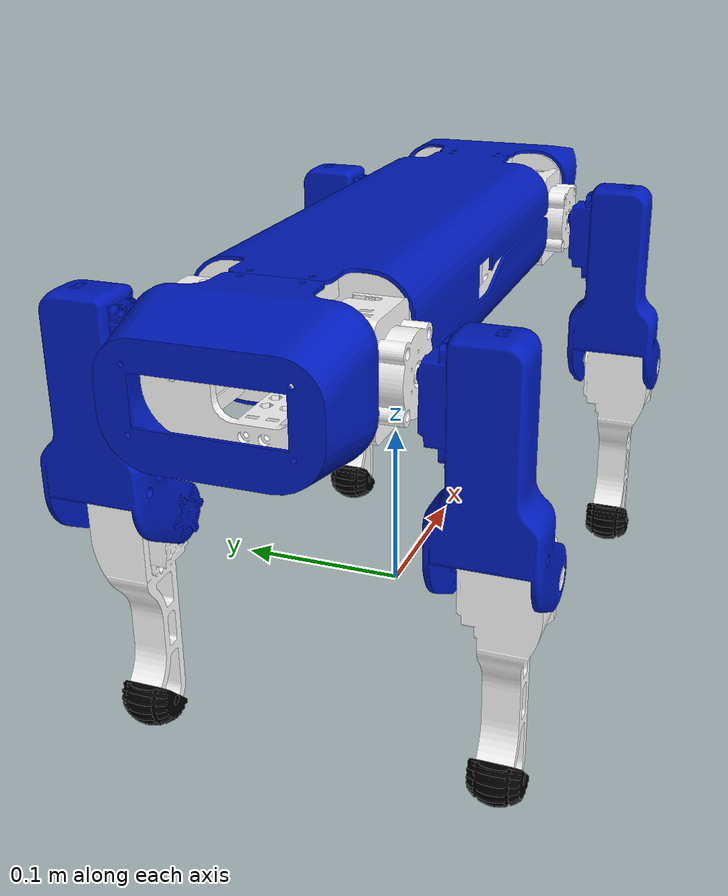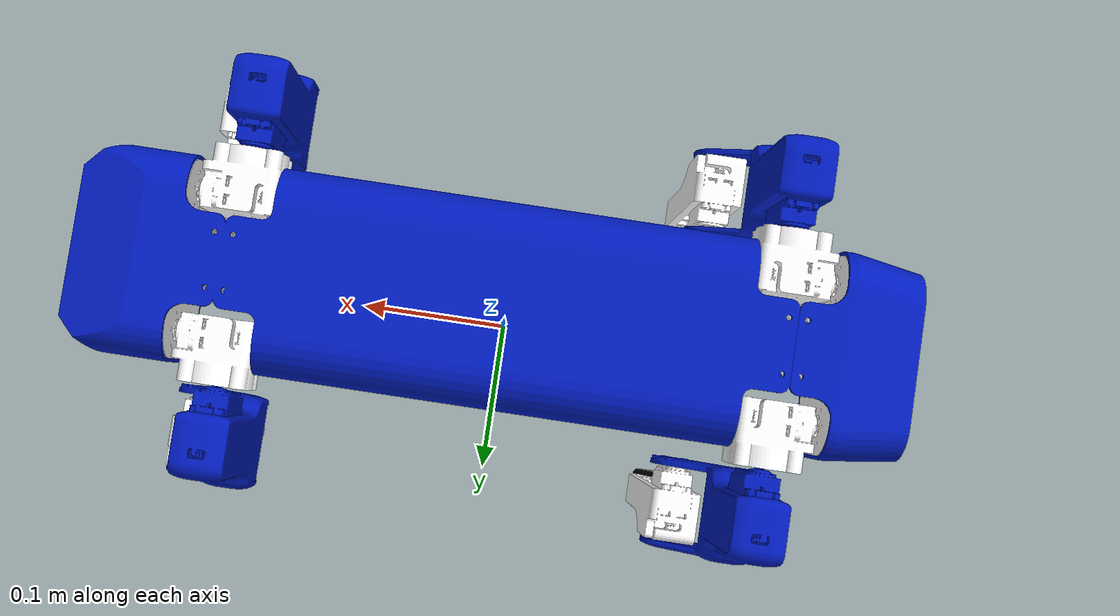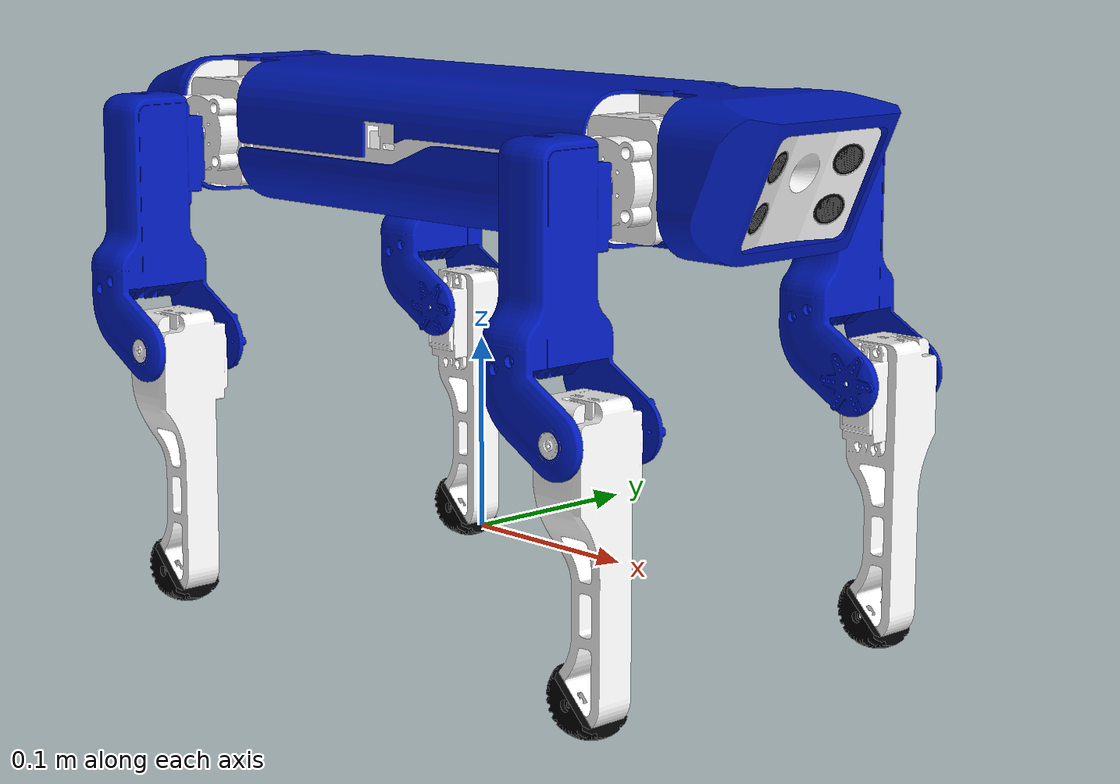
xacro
<?xml version="1.0" ?>
<robot name="spotty" xmlns:xacro="http://www.ros.org/wiki/xacro">

<xacro:include filename="$(find spotty_description)/urdf/spotty.gazebo" />
<xacro:include filename="$(find spotty_description)/urdf/spotty.trans" />
<xacro:include filename="$(find spotty_description)/urdf/materials.xacro" />

<!-- LINK -->

<link name="base_odom">
</link>

<link name="base_link">
  <inertial>
    <origin xyz="0.00020902261971693134 4.8225601862200574e-05 -0.0006015050067879294" rpy="0 0 0"/>
    <mass value="0.30443631870726445"/>
    <inertia ixx="0.00045" iyy="0.004962" izz="0.005184" ixy="1e-06" iyz="0.0" ixz="0.0"/>
  </inertial>
  <visual>
    <origin xyz="0 0 0" rpy="0 0 0"/>
    <geometry>
      <mesh filename="package://spotty_description/meshes/base_link.stl" scale="0.001 0.001 0.001"/>
    </geometry>
    <material name="white"/>
  </visual>
  <collision>
    <origin xyz="0 0 0" rpy="0 0 0"/>
    <geometry>
      <box size="0.26 0.11 0.07"/>
    </geometry>
  </collision>
</link>

<link name="front_cover_link">
  <inertial>
    <origin xyz="-0.09198458121707576 0.004987805533090641 0.020957654451882843" rpy="0 0 0"/>
    <mass value="1.0538029561695712"/>
    <inertia ixx="0.002059" iyy="0.015193" izz="0.016308" ixy="-2e-06" iyz="-0.0" ixz="0.001007"/>
  </inertial>
  <visual>
    <origin xyz="-0.15875 0.005 0.0" rpy="0 0 0"/>
    <geometry>
      <mesh filename="package://spotty_description/meshes/front_link.stl" scale="0.001 0.001 0.001"/>
    </geometry>
    <material name="blue"/>
  </visual>
  <collision>
    <origin xyz="0.048 0.005 0" rpy="0 0 0"/>
    <geometry>
      <box size="0.05825 0.11 0.07"/>
    </geometry>
  </collision>
</link>

<link name="rear_cover_link">
  <inertial>
    <origin xyz="0.09959773739649241 0.005000384322942722 -0.01911040508583787" rpy="0 0 0"/>
    <mass value="0.9732444797625318"/>
    <inertia ixx="0.001903" iyy="0.013413" izz="0.014369" ixy="0.0" iyz="-0.0" ixz="0.001117"/>
  </inertial>
  <visual>
    <origin xyz="0.15875 0.005 0.0" rpy="0 0 0"/>
    <geometry>
      <mesh filename="package://spotty_description/meshes/rear_link.stl" scale="0.001 0.001 0.001"/>
    </geometry>
    <material name="blue"/>
  </visual>
  <collision>
    <origin xyz="-0.041 0.005 0.0" rpy="0 0 0"/>
    <geometry>
      <box size="0.045 0.11 0.07"/>
    </geometry>
  </collision>
</link>

<link name="sensor_face_support_link">
  <inertial>
    <origin xyz="-0.005993554814395119 0.04323106909652843 -0.013058844893903814" rpy="0 0 0"/>
    <mass value="0.3305972363247997"/>
    <inertia ixx="0.000237" iyy="0.000112" izz="0.000172" ixy="-1e-06" iyz="0.0" ixz="-3e-05"/>
  </inertial>
  <visual>
    <origin xyz="-0.211664 0.043 -0.011242" rpy="0 0 0"/>
    <geometry>
      <mesh filename="package://spotty_description/meshes/sensor_face_link.stl" scale="0.001 0.001 0.001"/>
    </geometry>
    <material name="white"/>
  </visual>
  <collision>
    <origin xyz="-0.211664 0.043 -0.011242" rpy="0 0 0"/>
    <geometry>
      <mesh filename="package://spotty_description/meshes/sensor_face_link.stl" scale="0.001 0.001 0.001"/>
    </geometry>
  </collision>
</link>

<link name="left_ultrasonic_sensor_link">
  <inertial>
    <origin xyz="-0.014350229112798818 0.002773024008515635 -0.007757241323093005" rpy="0 0 0"/>
    <mass value="0.02528835836886261"/>
    <inertia ixx="4e-06" iyy="5e-06" izz="2e-06" ixy="-0.0" iyz="0.0" ixz="-1e-06"/>
  </inertial>
  <visual>
    <origin xyz="-0.21967 -0.024294 -0.007824" rpy="0 0 0"/>
    <geometry>
      <mesh filename="package://spotty_description/meshes/left_ultrasonic_sensor_link.stl" scale="0.001 0.001 0.001"/>
    </geometry>
    <material name="black"/>
  </visual>
</link>

<link name="optical_left_ultrasonic_sensor_link">
</link>

<link name="right_ultrasonic_sensor_link">
  <inertial>
    <origin xyz="-0.014350225456665422 -0.002773224813590037 -0.007757233246436109" rpy="0 0 0"/>
    <mass value="0.02528835836886261"/>
    <inertia ixx="4e-06" iyy="5e-06" izz="2e-06" ixy="0.0" iyz="-0.0" ixz="-1e-06"/>
  </inertial>
  <visual>
    <origin xyz="-0.21967 0.024293 -0.007824" rpy="0 0 0"/>
    <geometry>
      <mesh filename="package://spotty_description/meshes/right_ultrasonic_sensor_link.stl" scale="0.001 0.001 0.001"/>
    </geometry>
    <material name="black"/>
  </visual>
</link>

<link name="optical_right_ultrasonic_sensor_link">
</link>

<link name="camera_link">
  <inertial>
    <origin xyz="-0.004164947240767131 4.025455251841104e-07 0.0004522747634588414" rpy="0 0 0"/>
    <mass value="0.009136932367336871"/>
    <inertia ixx="1e-06" iyy="0.0" izz="0.0" ixy="0.0" iyz="-0.0" ixz="0.0"/>
  </inertial>
  <visual>
    <origin xyz="-0.200732 -0.0 -0.001456" rpy="0 0 0"/>
    <geometry>
      <mesh filename="package://spotty_description/meshes/camera_link.stl" scale="0.001 0.001 0.001"/>
    </geometry>
    <material name="black"/>
  </visual>
</link>

<link name="optical_camera_link">
</link>

<link name="front_right_shoulder_link">
  <inertial>
    <origin xyz="-0.0016542984907777225 -0.005584932654453888 -0.009932281115677361" rpy="0 0 0"/>
    <mass value="0.43602933994498916"/>
    <inertia ixx="0.00015" iyy="0.000179" izz="0.000118" ixy="2e-06" iyz="0.0" ixz="-0.0"/>
  </inertial>
  <visual>
    <origin xyz="-0.15325 0.039 -0.009" rpy="0 0 0"/>
    <geometry>
      <mesh filename="package://spotty_description/meshes/front_right_shoulder_link.stl" scale="0.001 0.001 0.001"/>
    </geometry>
    <material name="white"/>
  </visual>
  <collision>
    <origin xyz="0.0 -0.0025 -0.009" rpy="0 0 0"/>
    <geometry>
      <box size="0.044 0.037 0.07"/>
    </geometry>
  </collision>
</link>

<link name="front_right_leg_link">
  <inertial>
    <origin xyz="0.0015680354138068453 -0.03506934487717556 -0.04006022180366868" rpy="0 0 0"/>
    <mass value="1.0511050419548709"/>
    <inertia ixx="0.001611" iyy="0.00147" izz="0.000386" ixy="-1e-06" iyz="-4.8e-05" ixz="0.000102"/>
  </inertial>
  <visual>
    <origin xyz="-0.15255 0.063 0.001" rpy="0 0 0"/>
    <geometry>
      <mesh filename="package://spotty_description/meshes/front_right_leg_link.stl" scale="0.001 0.001 0.001"/>
    </geometry>
    <material name="blue"/>
  </visual>
  <collision>
    <origin xyz="0 -0.036 -0.032" rpy="0 0 0"/>
    <geometry>
      <box size="0.03 0.037 0.1106"/>
    </geometry>
  </collision>
</link>

<link name="front_right_foot_link">
  <inertial>
    <origin xyz="0.0008748479427208578 -0.0023372298260112 -0.03292840735657025" rpy="0 0 0"/>
    <mass value="0.6331144023537385"/>
    <inertia ixx="0.001076" iyy="0.001052" izz="0.000118" ixy="-2e-06" iyz="2.3e-05" ixz="3.3e-05"/>
  </inertial>
  <visual>
    <origin xyz="-0.18255 0.10065 0.10775" rpy="0 0 0"/>
    <geometry>
      <mesh filename="package://spotty_description/meshes/front_right_foot_link.stl" scale="0.001 0.001 0.001"/>
    </geometry>
    <material name="white"/>
  </visual>
  <collision>
    <origin xyz="0.0 0.0 -0.0483" rpy="0 0 0"/>
    <geometry>
      <box size="0.030 0.020 0.117"/>
    </geometry>
  </collision>
</link>

<link name="front_right_toe_link">
  <inertial>
    <origin xyz="-0.004155509486183956 -6.401456177085318e-07 -0.004154421861264912" rpy="0 0 0"/>
    <mass value="0.06493004425254276"/>
    <inertia ixx="8e-06" iyy="8e-06" izz="8e-06" ixy="0.0" iyz="0.0" ixz="3e-06"/>
  </inertial>
  <visual>
    <origin xyz="-0.180183 0.10135 0.228368" rpy="0 0 0"/>
    <geometry>
      <mesh filename="package://spotty_description/meshes/front_right_toe_link.stl" scale="0.001 0.001 0.001"/>
    </geometry>
    <material name="black"/>
  </visual>
  <collision>
    <origin xyz="0.0 0.0 -0.0015" rpy="0 0 0"/>
    <geometry>
      <sphere radius="0.015"/>
    </geometry>
  </collision>
</link>

<link name="front_left_shoulder_link">
  <inertial>
    <origin xyz="-0.0016543357277108706 0.005585743301051223 -0.009932185985287317" rpy="0 0 0"/>
    <mass value="0.4360328404223618"/>
    <inertia ixx="0.00015" iyy="0.000179" izz="0.000118" ixy="-2e-06" iyz="-0.0" ixz="-0.0"/>
  </inertial>
  <visual>
    <origin xyz="-0.15325 -0.039 -0.009" rpy="0 0 0"/>
    <geometry>
      <mesh filename="package://spotty_description/meshes/front_left_shoulder_link.stl" scale="0.001 0.001 0.001"/>
    </geometry>
    <material name="white"/>
  </visual>
  <collision>
    <origin xyz="0.0 0.0025 -0.009" rpy="0 0 0"/>
    <geometry>
      <box size="0.044 0.037 0.07"/>
    </geometry>
  </collision>
</link>

<link name="front_left_leg_link">
  <inertial>
    <origin xyz="0.0015680290766370564 0.0350702109049426 -0.04006021617647847" rpy="0 0 0"/>
    <mass value="1.0511049613338161"/>
    <inertia ixx="0.001611" iyy="0.00147" izz="0.000386" ixy="1e-06" iyz="4.8e-05" ixz="0.000102"/>
  </inertial>
  <visual>
    <origin xyz="-0.15255 -0.063 0.001" rpy="0 0 0"/>
    <geometry>
      <mesh filename="package://spotty_description/meshes/front_left_leg_link.stl" scale="0.001 0.001 0.001"/>
    </geometry>
    <material name="blue"/>
  </visual>
  <collision>
    <origin xyz="0 0.036 -0.032" rpy="0 0 0"/>
    <geometry>
      <box size="0.03 0.037 0.1106"/>
    </geometry>
  </collision>
</link>

<link name="front_left_foot_link">
  <inertial>
    <origin xyz="0.000874850369267377 0.002338122491525832 -0.03292840591679373" rpy="0 0 0"/>
    <mass value="0.6331144723952644"/>
    <inertia ixx="0.001076" iyy="0.001052" izz="0.000118" ixy="2e-06" iyz="-2.3e-05" ixz="3.3e-05"/>
  </inertial>
  <visual>
    <origin xyz="-0.18255 -0.10065 0.10775" rpy="0 0 0"/>
    <geometry>
      <mesh filename="package://spotty_description/meshes/front_left_foot_link.stl" scale="0.001 0.001 0.001"/>
    </geometry>
    <material name="white"/>
  </visual>
  <collision>
    <origin xyz="0.0 0.0 -0.0483" rpy="0 0 0"/>
    <geometry>
      <box size="0.030 0.020 0.117"/>
    </geometry>
  </collision>
</link>

<link name="front_left_toe_link">
  <inertial>
    <origin xyz="-0.004151625883102583 -3.299655052663164e-07 -0.004152267667033915" rpy="0 0 0"/>
    <mass value="0.06495623656223376"/>
    <inertia ixx="8e-06" iyy="8e-06" izz="8e-06" ixy="0.0" iyz="0.0" ixz="3e-06"/>
  </inertial>
  <visual>
    <origin xyz="-0.180183 -0.10135 0.228368" rpy="0 0 0"/>
    <geometry>
      <mesh filename="package://spotty_description/meshes/front_left_toe_link.stl" scale="0.001 0.001 0.001"/>
    </geometry>
    <material name="black"/>
  </visual>
  <collision>
    <origin xyz="0.0 0.0 -0.0015" rpy="0 0 0"/>
    <geometry>
      <sphere radius="0.015"/>
    </geometry>
  </collision>
</link>

<link name="rear_right_shoulder_link">
  <inertial>
    <origin xyz="0.001655228054530028 -0.005584895121144434 -0.009932187078876574" rpy="0 0 0"/>
    <mass value="0.4360327621893695"/>
    <inertia ixx="0.00015" iyy="0.000179" izz="0.000118" ixy="-2e-06" iyz="0.0" ixz="0.0"/>
  </inertial>
  <visual>
    <origin xyz="0.15325 0.039 -0.009" rpy="0 0 0"/>
    <geometry>
      <mesh filename="package://spotty_description/meshes/rear_right_shoulder_link.stl" scale="0.001 0.001 0.001"/>
    </geometry>
    <material name="white"/>
  </visual>
  <collision>
    <origin xyz="0.0 -0.0025 -0.009" rpy="0 0 0"/>
    <geometry>
      <box size="0.044 0.037 0.07"/>
    </geometry>
  </collision>
</link>

<link name="rear_right_leg_link">
  <inertial>
    <origin xyz="0.0015680060786525396 -0.0350693459690756 -0.04006021884086707" rpy="0 0 0"/>
    <mass value="1.0511050020771726"/>
    <inertia ixx="0.001611" iyy="0.00147" izz="0.000386" ixy="-1e-06" iyz="-4.8e-05" ixz="0.000102"/>
  </inertial>
  <visual>
    <origin xyz="0.15255 0.063 0.001" rpy="0 0 0"/>
    <geometry>
      <mesh filename="package://spotty_description/meshes/rear_right_leg_link.stl" scale="0.001 0.001 0.001"/>
    </geometry>
    <material name="blue"/>
  </visual>
  <collision>
    <origin xyz="0 -0.036 -0.032" rpy="0 0 0"/>
    <geometry>
      <box size="0.03 0.037 0.1106"/>
    </geometry>
  </collision>
</link>

<link name="rear_right_foot_link">
  <inertial>
    <origin xyz="0.0008748002650984243 -0.002337223287890322 -0.03292840413244362" rpy="0 0 0"/>
    <mass value="0.6331144008783258"/>
    <inertia ixx="0.001076" iyy="0.001052" izz="0.000118" ixy="-2e-06" iyz="2.3e-05" ixz="3.3e-05"/>
  </inertial>
  <visual>
    <origin xyz="0.12255 0.10065 0.10775" rpy="0 0 0"/>
    <geometry>
      <mesh filename="package://spotty_description/meshes/rear_right_foot_link.stl" scale="0.001 0.001 0.001"/>
    </geometry>
    <material name="white"/>
  </visual>
  <collision>
    <origin xyz="0.0 0.0 -0.0483" rpy="0 0 0"/>
    <geometry>
      <box size="0.030 0.020 0.117"/>
    </geometry>
  </collision>
</link>

<link name="rear_right_toe_link">
  <inertial>
    <origin xyz="-0.004155509486179071 -6.401456167509645e-07 -0.004154421861266355" rpy="0 0 0"/>
    <mass value="0.06493004425254276"/>
    <inertia ixx="8e-06" iyy="8e-06" izz="8e-06" ixy="0.0" iyz="0.0" ixz="3e-06"/>
  </inertial>
  <visual>
    <origin xyz="0.124917 0.10135 0.228368" rpy="0 0 0"/>
    <geometry>
      <mesh filename="package://spotty_description/meshes/rear_right_toe_link.stl" scale="0.001 0.001 0.001"/>
    </geometry>
    <material name="black"/>
  </visual>
  <collision>
    <origin xyz="0.0 0.0 -0.0015" rpy="0 0 0"/>
    <geometry>
      <sphere radius="0.015"/>
    </geometry>
  </collision>
</link>

<link name="rear_left_shoulder_link">
  <inertial>
    <origin xyz="0.0016552203181348368 0.00558575064050066 -0.009932202448579973" rpy="0 0 0"/>
    <mass value="0.4360324350506454"/>
    <inertia ixx="0.00015" iyy="0.000179" izz="0.000118" ixy="2e-06" iyz="-0.0" ixz="0.0"/>
  </inertial>
  <visual>
    <origin xyz="0.15325 -0.039 -0.009" rpy="0 0 0"/>
    <geometry>
      <mesh filename="package://spotty_description/meshes/rear_left_shoulder_link.stl" scale="0.001 0.001 0.001"/>
    </geometry>
    <material name="white"/>
  </visual>
  <collision>
    <origin xyz="0.0 0.0025 -0.009" rpy="0 0 0"/>
    <geometry>
      <box size="0.044 0.037 0.07"/>
    </geometry>
  </collision>
</link>

<link name="rear_left_leg_link">
  <inertial>
    <origin xyz="0.0015680033756574618 0.035070211824869704 -0.04006021677732277" rpy="0 0 0"/>
    <mass value="1.051104923474581"/>
    <inertia ixx="0.001611" iyy="0.00147" izz="0.000386" ixy="1e-06" iyz="4.8e-05" ixz="0.000102"/>
  </inertial>
  <visual>
    <origin xyz="0.15255 -0.063 0.001" rpy="0 0 0"/>
    <geometry>
      <mesh filename="package://spotty_description/meshes/rear_left_leg_link.stl" scale="0.001 0.001 0.001"/>
    </geometry>
    <material name="blue"/>
  </visual>
  <collision>
    <origin xyz="0 0.036 -0.032" rpy="0 0 0"/>
    <geometry>
      <box size="0.03 0.037 0.1106"/>
    </geometry>
  </collision>
</link>

<link name="rear_left_foot_link">
  <inertial>
    <origin xyz="0.0008748023829627805 0.0023381229587267904 -0.03292840970392229" rpy="0 0 0"/>
    <mass value="0.6331141886569122"/>
    <inertia ixx="0.001076" iyy="0.001052" izz="0.000118" ixy="2e-06" iyz="-2.3e-05" ixz="3.3e-05"/>
  </inertial>
  <visual>
    <origin xyz="0.12255 -0.10065 0.10775" rpy="0 0 0"/>
    <geometry>
      <mesh filename="package://spotty_description/meshes/rear_left_foot_link.stl" scale="0.001 0.001 0.001"/>
    </geometry>
    <material name="white"/>
  </visual>
  <collision>
    <origin xyz="0.0 0.0 -0.0483" rpy="0 0 0"/>
    <geometry>
      <box size="0.030 0.020 0.117"/>
    </geometry>
  </collision>
</link>

<link name="rear_left_toe_link">
  <inertial>
    <origin xyz="-0.00414838524007291 1.3894420968774135e-06 -0.004147769272270424" rpy="0 0 0"/>
    <mass value="0.06498166475741922"/>
    <inertia ixx="8e-06" iyy="8e-06" izz="8e-06" ixy="-0.0" iyz="-0.0" ixz="3e-06"/>
  </inertial>
  <visual>
    <origin xyz="0.124917 -0.10135 0.228368" rpy="0 0 0"/>
    <geometry>
      <mesh filename="package://spotty_description/meshes/rear_left_toe_link.stl" scale="0.001 0.001 0.001"/>
    </geometry>
    <material name="black"/>
  </visual>
  <collision>
    <origin xyz="0.0 0.0 -0.0015" rpy="0 0 0"/>
    <geometry>
      <sphere radius="0.015"/>
    </geometry>
  </collision>
</link>

<!-- JOINT -->

<joint name="body_joint" type="fixed">
  <parent link="base_odom"/>
  <child link="base_link"/>
  <origin xyz="0 0 0.2"/>
</joint>

<joint name="front_cover_joint" type="fixed">
  <parent link="base_odom"/>
  <child link="front_cover_link"/>
  <origin xyz="0.15875 -0.005 0.2" rpy="0 0 0"/>
</joint>

<joint name="rear_cover_joint" type="fixed">
  <parent link="base_odom"/>
  <child link="rear_cover_link"/>
  <origin xyz="-0.15875 -0.005 0.2" rpy="0 0 0"/>
</joint>

<joint name="front_support_sensors_joint" type="fixed">
  <parent link="front_cover_link"/>
  <child link="sensor_face_support_link"/>
  <origin xyz="0.052914 -0.038 0.011242" rpy="0 0 0"/>
</joint>

<joint name="left_ultrasonic_sensor_joint" type="fixed">
  <parent link="sensor_face_support_link"/>
  <child link="left_ultrasonic_sensor_link"/>
  <origin xyz="0.008006 0.067294 -0.003418" rpy="0 0 0"/>
</joint>

<joint name="optical_left_ultrasonic_sensor_joint" type="fixed">
  <parent link="left_ultrasonic_sensor_link"/>
  <child link="optical_left_ultrasonic_sensor_link"/>
  <origin xyz="0.01 0.0 -0.01" rpy="0 0.174533 -0.261799"/>
</joint>

<joint name="right_ultrasonic_sensor_joint" type="fixed">
  <parent link="sensor_face_support_link"/>
  <child link="right_ultrasonic_sensor_link"/>
  <origin xyz="0.008006 0.018707 -0.003418" rpy="0 0 0"/>
</joint>

<joint name="optical_right_ultrasonic_sensor_joint" type="fixed">
  <parent link="right_ultrasonic_sensor_link"/>
  <child link="optical_right_ultrasonic_sensor_link"/>
  <origin xyz="0.01 0.0 -0.01" rpy="0 0.174533 0.261799"/>
</joint>

<joint name="camera_joint" type="fixed">
  <parent link="sensor_face_support_link"/>
  <child link="camera_link"/>
  <origin xyz="-0.010932 0.043 -0.009786" rpy="0 0 0"/>
</joint>

<joint name="optical_camera_joint" type="fixed">
  <parent link="camera_link"/>
  <child link="optical_camera_link"/>
  <origin xyz="0 0 0" rpy="0 0 0"/>
</joint>

<joint name="front_right_shoulder_joint" type="revolute">
  <origin xyz="0.15325 -0.039 0.009" rpy="0 0 0"/>
  <parent link="base_link"/>
  <child link="front_right_shoulder_link"/>
  <axis xyz="1.0 0.0 0.0"/>
  <limit upper="0.610865" lower="-0.610865" effort="1000.0" velocity="0.7"/>
  <dynamics damping="0.0" friction="0.5"/>
</joint>

<joint name="front_right_leg_joint" type="revolute">
  <origin xyz="-0.0007 -0.024 -0.01" rpy="0 0 0"/>
  <parent link="front_right_shoulder_link"/>
  <child link="front_right_leg_link"/>
  <axis xyz="0.0 1.0 0.0"/>
  <limit upper="2.094395" lower="-1.047198" effort="1000.0" velocity="0.7"/>
  <dynamics damping="0.0" friction="0.5"/>
</joint>

<joint name="front_right_foot_joint" type="revolute">
  <origin xyz="0.03 -0.03765 -0.10675" rpy="0 0 0"/>
  <parent link="front_right_leg_link"/>
  <child link="front_right_foot_link"/>
  <axis xyz="0.0 1.0 0.0"/>
  <limit upper="0.0" lower="-3.141593" effort="1000.0" velocity="0.7"/>
  <dynamics damping="0.0" friction="0.5"/>
</joint>

<joint name="front_right_toe_joint" type="fixed">
  <origin xyz="-0.002367 -0.0007 -0.120618" rpy="0 0 0"/>
  <parent link="front_right_foot_link"/>
  <child link="front_right_toe_link"/>
</joint>

<joint name="front_left_shoulder_joint" type="revolute">
  <origin xyz="0.15325 0.039 0.009" rpy="0 0 0"/>
  <parent link="base_link"/>
  <child link="front_left_shoulder_link"/>
  <axis xyz="1.0 0.0 0.0"/>
  <limit upper="0.610865" lower="-0.610865" effort="1000.0" velocity="0.7"/>
  <dynamics damping="0.0" friction="0.5"/>
</joint>

<joint name="front_left_leg_joint" type="revolute">
  <origin xyz="-0.0007 0.024 -0.01" rpy="0 0 0"/>
  <parent link="front_left_shoulder_link"/>
  <child link="front_left_leg_link"/>
  <axis xyz="0.0 1.0 0.0"/>
  <limit upper="2.094395" lower="-1.047198" effort="1000.0" velocity="0.7"/>
  <dynamics damping="0.0" friction="0.5"/>
</joint>

<joint name="front_left_foot_joint" type="revolute">
  <origin xyz="0.03 0.03765 -0.10675" rpy="0 0 0"/>
  <parent link="front_left_leg_link"/>
  <child link="front_left_foot_link"/>
  <axis xyz="0.0 1.0 0.0"/>
  <limit upper="0.0" lower="-3.141593" effort="1000.0" velocity="0.7"/>
  <dynamics damping="0.0" friction="0.5"/>
</joint>

<joint name="front_left_toe_joint" type="fixed">
  <origin xyz="-0.002367 0.0007 -0.120618" rpy="0 0 0"/>
  <parent link="front_left_foot_link"/>
  <child link="front_left_toe_link"/>
</joint>

<joint name="rear_right_shoulder_joint" type="revolute">
  <origin xyz="-0.15325 -0.039 0.009" rpy="0 0 0"/>
  <parent link="base_link"/>
  <child link="rear_right_shoulder_link"/>
  <axis xyz="1.0 0.0 0.0"/>
  <limit upper="0.610865" lower="-0.610865" effort="1000.0" velocity="0.7"/>
  <dynamics damping="0.0" friction="0.5"/>
</joint>

<joint name="rear_right_leg_joint" type="revolute">
  <origin xyz="0.0007 -0.024 -0.01" rpy="0 0 0"/>
  <parent link="rear_right_shoulder_link"/>
  <child link="rear_right_leg_link"/>
  <axis xyz="0.0 1.0 0.0"/>
  <limit upper="2.094395" lower="-1.047198" effort="1000.0" velocity="0.7"/>
  <dynamics damping="0.0" friction="0.5"/>
</joint>

<joint name="rear_right_foot_joint" type="revolute">
  <origin xyz="0.03 -0.03765 -0.10675" rpy="0 0 0"/>
  <parent link="rear_right_leg_link"/>
  <child link="rear_right_foot_link"/>
  <axis xyz="0.0 1.0 0.0"/>
  <limit upper="0.0" lower="-3.141593" effort="1000.0" velocity="0.7"/>
  <dynamics damping="0.0" friction="0.5"/>
</joint>

<joint name="rear_right_toe_joint" type="fixed">
  <origin xyz="-0.002367 -0.0007 -0.120618" rpy="0 0 0"/>
  <parent link="rear_right_foot_link"/>
  <child link="rear_right_toe_link"/>
</joint>

<joint name="rear_left_shoulder_joint" type="revolute">
  <origin xyz="-0.15325 0.039 0.009" rpy="0 0 0"/>
  <parent link="base_link"/>
  <child link="rear_left_shoulder_link"/>
  <axis xyz="1.0 0.0 0.0"/>
  <limit upper="0.610865" lower="-0.610865" effort="1000.0" velocity="0.7"/>
  <dynamics damping="0.0" friction="0.5"/>
</joint>

<joint name="rear_left_leg_joint" type="revolute">
  <origin xyz="0.0007 0.024 -0.01" rpy="0 0 0"/>
  <parent link="rear_left_shoulder_link"/>
  <child link="rear_left_leg_link"/>
  <axis xyz="0.0 1.0 0.0"/>
  <limit upper="2.094395" lower="-1.047198" effort="1000.0" velocity="0.7"/>
  <dynamics damping="0.0" friction="0.5"/>
</joint>

<joint name="rear_left_foot_joint" type="revolute">
  <origin xyz="0.03 0.03765 -0.10675" rpy="0 0 0"/>
  <parent link="rear_left_leg_link"/>
  <child link="rear_left_foot_link"/>
  <axis xyz="0.0 1.0 0.0"/>
  <limit upper="0.0" lower="-3.141593" effort="1000.0" velocity="0.7"/>
  <dynamics damping="0.0" friction="0.5"/>
</joint>

<joint name="rear_left_toe_joint" type="fixed">
  <origin xyz="-0.002367 0.0007 -0.120618" rpy="0 0 0"/>
  <parent link="rear_left_foot_link"/>
  <child link="rear_left_toe_link"/>
</joint>

</robot>

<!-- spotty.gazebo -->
<robot name="spotty" xmlns:xacro="http://www.ros.org/wiki/xacro" >

<xacro:property name="white" value="Gazebo/White" />
<xacro:property name="blue" value="Gazebo/Blue" />
<xacro:property name="black" value="Gazebo/Black" />

<gazebo>
  <plugin name="gazebo_ros_control" filename="libgazebo_ros_control.so">
  <robotNamespace>spotty_controller</robotNamespace>

  <odometryTopic>odom</odometryTopic>
  <odometryFrame>odom</odometryFrame>
  <robotBaseFrame>base_odom</robotBaseFrame>
  <odometrySource>1</odometrySource>
  <publishOdom>true</publishOdom>

  </plugin>
</gazebo>

<gazebo reference="base_link">
  <material>${white}</material>
  <gravity>true</gravity>
  <sensor name="imu_sensor" type="imu">
  	<always_on>true</always_on>
  	<update_rate>100</update_rate>
  	<visualize>true</visualize>
  	<topic>__default_topic__</topic>
  	<plugin filename="libgazebo_ros_imu_sensor.so" name="imu_plugin">
  		<topicName>spotty_imu/base_link_orientation</topicName>
  		<bodyName>imu_link</bodyName>
  		<updateRateHZ>15.0</updateRateHZ>
  		<gaussianNoise>0.0</gaussianNoise>
  		<xyzOffset>0 0 0</xyzOffset>
  		<rpyOffset>0 0 0</rpyOffset>
  		<frameName>base_link</frameName>
  		<initialOrientationAsReference>false</initialOrientationAsReference>
  	</plugin>
  	<pose>0 0 0 0 0 0</pose>
  </sensor>
</gazebo>

<gazebo>
	<plugin name="joint_state_publisher" filename="libgazebo_ros_joint_state_publisher.so">
		<robotNamespace>spotty_gazebo</robotNamespace>
		<jointName> front_right_shoulder_joint, front_right_leg_joint, front_right_foot_joint, front_left_shoulder_joint, front_left_leg_joint, front_left_foot_joint, rear_right_shoulder_joint, rear_right_leg_joint, rear_right_foot_joint, rear_left_shoulder_joint, rear_left_leg_joint, rear_left_foot_joint</jointName>
		<updateRate>100</updateRate>
	</plugin>
</gazebo>

<gazebo reference="front_cover_link">
  <material>${blue}</material>
</gazebo>

<gazebo reference="rear_cover_link">
  <material>${blue}</material>
</gazebo>

<gazebo reference="front_left_shoulder_link">
  <material>${white}</material>
</gazebo>

<gazebo reference="front_left_leg_link">
  <material>${blue}</material>
</gazebo>

<gazebo reference="front_left_foot_link">
  <material>${white}</material>
</gazebo>

<gazebo reference="front_left_toe_link">
  <material>${black}</material>
  <mu1>1.0</mu1>
  <mu2>1.0</mu2>
  <minDepth>0.0002</minDepth>
  <kp value="1000000.0"/>
  <kd value="100.0"/>
</gazebo>

<gazebo reference="front_right_shoulder_link">
  <material>${white}</material>
</gazebo>

<gazebo reference="front_right_leg_link">
  <material>${blue}</material>
</gazebo>

<gazebo reference="front_right_foot_link">
  <material>${white}</material>
</gazebo>

<gazebo reference="front_right_toe_link">
  <material>${black}</material>
  <mu1>1.0</mu1>
  <mu2>1.0</mu2>
  <minDepth>0.0002</minDepth>
  <kp value="1000000.0"/>
  <kd value="100.0"/>
</gazebo>

<gazebo reference="rear_left_shoulder_link">
  <material>${white}</material>
</gazebo>

<gazebo reference="rear_left_leg_link">
  <material>${blue}</material>
</gazebo>

<gazebo reference="rear_left_foot_link">
  <material>${white}</material>
</gazebo>

<gazebo reference="rear_left_toe_link">
  <material>${black}</material>
  <mu1>1.0</mu1>
  <mu2>1.0</mu2>
  <minDepth>0.0002</minDepth>
  <kp value="1000000.0"/>
  <kd value="100.0"/>
</gazebo>

<gazebo reference="rear_right_shoulder_link">
  <material>${white}</material>
</gazebo>

<gazebo reference="rear_right_leg_link">
  <material>${blue}</material>
</gazebo>

<gazebo reference="rear_right_foot_link">
  <material>${white}</material>
</gazebo>

<gazebo reference="rear_right_toe_link">
  <material>${black}</material>
  <mu1>1.0</mu1>
  <mu2>1.0</mu2>
  <minDepth>0.0002</minDepth>
  <kp value="1000000.0"/>
  <kd value="100.0"/>
</gazebo>

<gazebo reference="sensor_face_support_link">
  <material>${white}</material>
</gazebo>

<gazebo reference="left_ultrasonic_sensor_link">
  <material>${black}</material>
</gazebo>

<gazebo reference="right_ultrasonic_sensor_link">
  <material>${black}</material>
</gazebo>

<gazebo reference="camera_link">
  <material>${black}</material>
  <sensor name="camera" type="camera">
  	<pose> 0 0 0 0 0 0 </pose>
  	<visualize>true</visualize>
  	<update_rate>10</update_rate>
  	<camera>
  		<horizontal_fov>1.089</horizontal_fov>
  		<image>
  			<format>R8G8B8</format>
  			<width>640</width>
  			<height>480</height>
		</image>
		<clip>
			<near>0.05</near>
			<far>8.0</far>
		</clip>
	</camera>
	<plugin name="camera_controller" filename="libgazebo_ros_camera.so">
		<frame_name>optical_camera_link</frame_name>
	</plugin>
</sensor>
</gazebo>

<gazebo reference="optical_left_ultrasonic_sensor_link">
  <sensor type="ray" name="sonar">
    <visualize>true</visualize>
    <update_rate>100</update_rate>
    <ray>
      <scan>
        <horizontal>
          <samples>100</samples>
          <resolution>1.0</resolution>
          <min_angle>-0.5</min_angle>
          <max_angle>0.5</max_angle>
        </horizontal>
        <vertical>
          <samples>10</samples>
          <resolution>1.0</resolution>
          <min_angle>-0.5</min_angle>
          <max_angle>0.5</max_angle>
        </vertical>
      </scan>
      <range>
        <min>0.01</min>
        <max>2.0</max>
        <resolution>0.02</resolution>
      </range>
    </ray>
    <plugin filename="libgazebo_ros_range.so" name="gazebo_ros_range">
      <gaussianNoise>0.005</gaussianNoise>
      <alwaysOn>true</alwaysOn>
      <updateRate>100</updateRate>
      <topicName>/sonar/left</topicName>
      <frameName>optical_left_ultrasonic_sensor_link</frameName>
      <fov>1.0</fov>
      <radiation>ultrasound</radiation>
    </plugin>
  </sensor>
</gazebo>

<gazebo reference="optical_right_ultrasonic_sensor_link">
  <sensor type="ray" name="sonar">
    <visualize>true</visualize>
    <update_rate>100</update_rate>
    <ray>
      <scan>
        <horizontal>
          <samples>100</samples>
          <resolution>1.0</resolution>
          <min_angle>-0.5</min_angle>
          <max_angle>0.5</max_angle>
        </horizontal>
        <vertical>
          <samples>10</samples>
          <resolution>1.0</resolution>
          <min_angle>-0.5</min_angle>
          <max_angle>0.5</max_angle>
        </vertical>
      </scan>
      <range>
        <min>0.01</min>
        <max>2.0</max>
        <resolution>0.02</resolution>
      </range>
    </ray>
    <plugin filename="libgazebo_ros_range.so" name="gazebo_ros_range">
      <gaussianNoise>0.005</gaussianNoise>
      <alwaysOn>true</alwaysOn>
      <updateRate>100</updateRate>
      <topicName>/sonar/right</topicName>
      <frameName>optical_right_ultrasonic_sensor_link</frameName>
      <fov>1.0</fov>
      <radiation>ultrasound</radiation>
    </plugin>
  </sensor>
</gazebo>

</robot>

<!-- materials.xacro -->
<robot name="dog_poliba" xmlns:xacro="http://www.ros.org/wiki/xacro" >

<material name="blue">
  <color rgba="0 0.1058823529411765 0.7411764705882353 1"/>
</material>

<material name="white">
  <color rgba="1 1 1 1"/>
</material>

<material name="black">
  <color rgba="0 0 0 1"/>
</material>

</robot>
